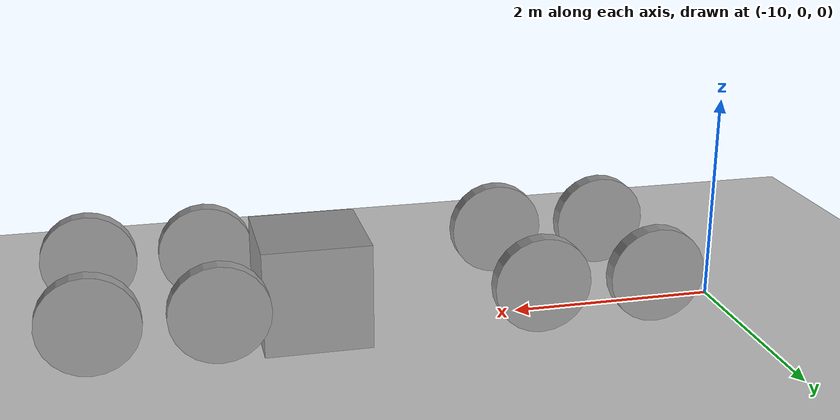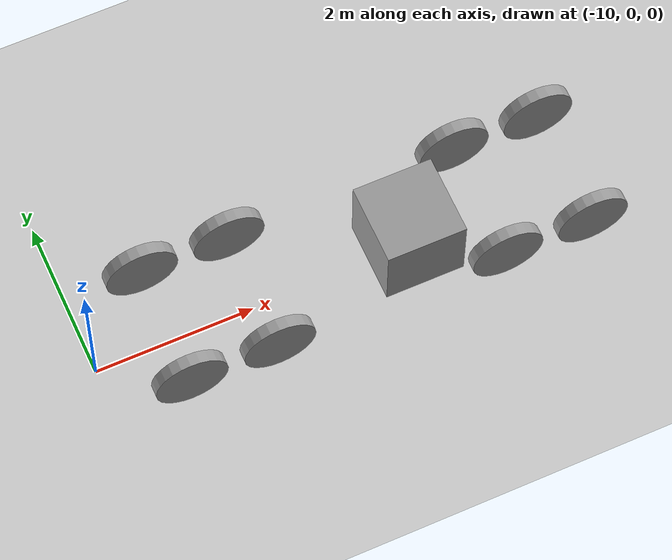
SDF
<sdf version="1.7">
 <world name="default">
  <model name="ground_plane">
   <static>1</static>
   <link name="link">
    <collision name="collision">
     <geometry><plane><normal>0 0 1</normal><size>100 100</size></plane></geometry>
     <surface>
      <contact><collide_bitmask>65535</collide_bitmask></contact>
      <friction><ode><mu>100</mu><mu2>50</mu2></ode></friction>
     </surface>
    </collision>
    <visual name="visual">
     <cast_shadows>0</cast_shadows>
     <geometry><plane><normal>0 0 1</normal><size>100 100</size></plane></geometry>
     <material>
      <script><uri>file://media/materials/scripts/gazebo.material</uri><name>Gazebo/Grey</name></script>
     </material>
    </visual>
   </link>
  </model>
  <model name="train_wheels_0">
   <link name="link">
    <inertial>
     <mass>1</mass>
     <inertia><ixx>0.145833</ixx><ixy>0</ixy><ixz>0</ixz><iyy>0.145833</iyy><iyz>0</iyz><izz>0.125</izz></inertia>
    </inertial>
    <pose>3 0.75 0.6 0 -0 0</pose>
    <collision name="collision">
     <geometry><cylinder><radius>0.45</radius><length>0.15</length></cylinder></geometry>
     <pose>0 0 0 1.5708 -0 0</pose>
    </collision>
    <visual name="visual">
     <geometry><cylinder><radius>0.45</radius><length>0.15</length></cylinder></geometry>
     <material>
      <script><name>Gazebo/Grey</name><uri>file://media/materials/scripts/gazebo.material</uri></script>
      <shader type="pixel"><normal_map>__default__</normal_map></shader>
      <ambient>0.3 0.3 0.3 1</ambient>
      <diffuse>0.7 0.7 0.7 1</diffuse>
      <specular>0.01 0.01 0.01 1</specular>
      <emissive>0 0 0 1</emissive>
     </material>
     <pose>0 0 0 1.5708 -0 0</pose>
    </visual>
   </link>
   <link name="link_clone">
    <inertial>
     <mass>1</mass>
     <inertia><ixx>0.145833</ixx><ixy>0</ixy><ixz>0</ixz><iyy>0.145833</iyy><iyz>0</iyz><izz>0.125</izz></inertia>
    </inertial>
    <pose>1.9 0.75 0.6 0 -0 0</pose>
    <collision name="collision">
     <geometry><cylinder><radius>0.45</radius><length>0.15</length></cylinder></geometry>
     <pose>0 0 0 1.5708 -0 0</pose>
    </collision>
    <visual name="visual">
     <geometry><cylinder><radius>0.45</radius><length>0.15</length></cylinder></geometry>
     <material>
      <script><name>Gazebo/Grey</name><uri>file://media/materials/scripts/gazebo.material</uri></script>
      <shader type="pixel"><normal_map>__default__</normal_map></shader>
      <ambient>0.3 0.3 0.3 1</ambient>
      <diffuse>0.7 0.7 0.7 1</diffuse>
      <specular>0.01 0.01 0.01 1</specular>
      <emissive>0 0 0 1</emissive>
     </material>
     <pose>0 0 0 1.5708 -0 0</pose>
    </visual>
   </link>
   <link name="link_clone_0">
    <inertial>
     <mass>1</mass>
     <inertia><ixx>0.145833</ixx><ixy>0</ixy><ixz>0</ixz><iyy>0.145833</iyy><iyz>0</iyz><izz>0.125</izz></inertia>
    </inertial>
    <pose>3 -0.75 0.6 0 -0 0</pose>
    <collision name="collision">
     <geometry><cylinder><radius>0.45</radius><length>0.15</length></cylinder></geometry>
     <pose>0 0 0 1.5708 -0 0</pose>
    </collision>
    <visual name="visual">
     <geometry><cylinder><radius>0.45</radius><length>0.15</length></cylinder></geometry>
     <material>
      <script><name>Gazebo/Grey</name><uri>file://media/materials/scripts/gazebo.material</uri></script>
      <shader type="pixel"><normal_map>__default__</normal_map></shader>
      <ambient>0.3 0.3 0.3 1</ambient>
      <diffuse>0.7 0.7 0.7 1</diffuse>
      <specular>0.01 0.01 0.01 1</specular>
      <emissive>0 0 0 1</emissive>
     </material>
     <pose>0 0 0 1.5708 -0 0</pose>
    </visual>
   </link>
   <link name="link_clone_0_clone">
    <inertial>
     <mass>1</mass>
     <inertia><ixx>0.145833</ixx><ixy>0</ixy><ixz>0</ixz><iyy>0.145833</iyy><iyz>0</iyz><izz>0.125</izz></inertia>
    </inertial>
    <pose>1.9 -0.75 0.6 0 -0 0</pose>
    <collision name="collision">
     <geometry><cylinder><radius>0.45</radius><length>0.15</length></cylinder></geometry>
     <pose>0 0 0 1.5708 -0 0</pose>
    </collision>
    <visual name="visual">
     <geometry><cylinder><radius>0.45</radius><length>0.15</length></cylinder></geometry>
     <material>
      <script><name>Gazebo/Grey</name><uri>file://media/materials/scripts/gazebo.material</uri></script>
      <shader type="pixel"><normal_map>__default__</normal_map></shader>
      <ambient>0.3 0.3 0.3 1</ambient>
      <diffuse>0.7 0.7 0.7 1</diffuse>
      <specular>0.01 0.01 0.01 1</specular>
      <emissive>0 0 0 1</emissive>
     </material>
     <pose>0 0 0 1.5708 -0 0</pose>
    </visual>
   </link>
   <link name="link_clone_0_clone_clone">
    <inertial>
     <mass>1</mass>
     <inertia><ixx>0.145833</ixx><ixy>0</ixy><ixz>0</ixz><iyy>0.145833</iyy><iyz>0</iyz><izz>0.125</izz></inertia>
    </inertial>
    <pose>-1 -0.75 0.6 0 -0 0</pose>
    <collision name="collision">
     <geometry><cylinder><radius>0.45</radius><length>0.15</length></cylinder></geometry>
     <pose>0 0 0 1.5708 -0 0</pose>
    </collision>
    <visual name="visual">
     <geometry><cylinder><radius>0.45</radius><length>0.15</length></cylinder></geometry>
     <material>
      <script><name>Gazebo/Grey</name><uri>file://media/materials/scripts/gazebo.material</uri></script>
      <shader type="pixel"><normal_map>__default__</normal_map></shader>
      <ambient>0.3 0.3 0.3 1</ambient>
      <diffuse>0.7 0.7 0.7 1</diffuse>
      <specular>0.01 0.01 0.01 1</specular>
      <emissive>0 0 0 1</emissive>
     </material>
     <pose>0 0 0 1.5708 -0 0</pose>
    </visual>
   </link>
   <link name="link_clone_0_clone_clone_clone">
    <inertial>
     <mass>1</mass>
     <inertia><ixx>0.145833</ixx><ixy>0</ixy><ixz>0</ixz><iyy>0.145833</iyy><iyz>0</iyz><izz>0.125</izz></inertia>
    </inertial>
    <pose>-2.1 -0.75 0.6 0 -0 0</pose>
    <collision name="collision">
     <geometry><cylinder><radius>0.45</radius><length>0.15</length></cylinder></geometry>
     <pose>0 0 0 1.5708 -0 0</pose>
    </collision>
    <visual name="visual">
     <geometry><cylinder><radius>0.45</radius><length>0.15</length></cylinder></geometry>
     <material>
      <script><name>Gazebo/Grey</name><uri>file://media/materials/scripts/gazebo.material</uri></script>
      <shader type="pixel"><normal_map>__default__</normal_map></shader>
      <ambient>0.3 0.3 0.3 1</ambient>
      <diffuse>0.7 0.7 0.7 1</diffuse>
      <specular>0.01 0.01 0.01 1</specular>
      <emissive>0 0 0 1</emissive>
     </material>
     <pose>0 0 0 1.5708 -0 0</pose>
    </visual>
   </link>
   <link name="link_clone_clone">
    <inertial>
     <mass>1</mass>
     <inertia><ixx>0.145833</ixx><ixy>0</ixy><ixz>0</ixz><iyy>0.145833</iyy><iyz>0</iyz><izz>0.125</izz></inertia>
    </inertial>
    <pose>-1 0.75 0.6 0 -0 0</pose>
    <collision name="collision">
     <geometry><cylinder><radius>0.45</radius><length>0.15</length></cylinder></geometry>
     <pose>0 0 0 1.5708 -0 0</pose>
    </collision>
    <visual name="visual">
     <geometry><cylinder><radius>0.45</radius><length>0.15</length></cylinder></geometry>
     <material>
      <script><name>Gazebo/Grey</name><uri>file://media/materials/scripts/gazebo.material</uri></script>
      <shader type="pixel"><normal_map>__default__</normal_map></shader>
      <ambient>0.3 0.3 0.3 1</ambient>
      <diffuse>0.7 0.7 0.7 1</diffuse>
      <specular>0.01 0.01 0.01 1</specular>
      <emissive>0 0 0 1</emissive>
     </material>
     <pose>0 0 0 1.5708 -0 0</pose>
    </visual>
   </link>
   <link name="link_clone_clone_clone">
    <inertial>
     <mass>1</mass>
     <inertia><ixx>0.145833</ixx><ixy>0</ixy><ixz>0</ixz><iyy>0.145833</iyy><iyz>0</iyz><izz>0.125</izz></inertia>
    </inertial>
    <pose>-2.1 0.75 0.6 0 -0 0</pose>
    <collision name="collision">
     <geometry><cylinder><radius>0.45</radius><length>0.15</length></cylinder></geometry>
     <pose>0 0 0 1.5708 -0 0</pose>
    </collision>
    <visual name="visual">
     <geometry><cylinder><radius>0.45</radius><length>0.15</length></cylinder></geometry>
     <material>
      <script><name>Gazebo/Grey</name><uri>file://media/materials/scripts/gazebo.material</uri></script>
      <shader type="pixel"><normal_map>__default__</normal_map></shader>
      <ambient>0.3 0.3 0.3 1</ambient>
      <diffuse>0.7 0.7 0.7 1</diffuse>
      <specular>0.01 0.01 0.01 1</specular>
      <emissive>0 0 0 1</emissive>
     </material>
     <pose>0 0 0 1.5708 -0 0</pose>
    </visual>
   </link>
   <static>1</static>
   <pose>-7 0 0 0 -0 0</pose>
  </model>
  <model name="unit_box">
   <pose>-6 0 0.5 0 -0 0</pose>
   <link name="link">
    <inertial>
     <mass>1</mass>
     <inertia>
      <ixx>0.166667</ixx>
      <ixy>0</ixy>
      <ixz>0</ixz>
      <iyy>0.166667</iyy>
      <iyz>0</iyz>
      <izz>0.166667</izz>
     </inertia>
    </inertial>
    <collision name="collision"><geometry><box><size>1 1 1</size></box></geometry></collision>
    <visual name="visual">
     <geometry><box><size>1 1 1</size></box></geometry>
     <material>
      <script><name>Gazebo/Grey</name><uri>file://media/materials/scripts/gazebo.material</uri></script>
     </material>
    </visual>
   </link>
  </model>
 </world>
</sdf>
